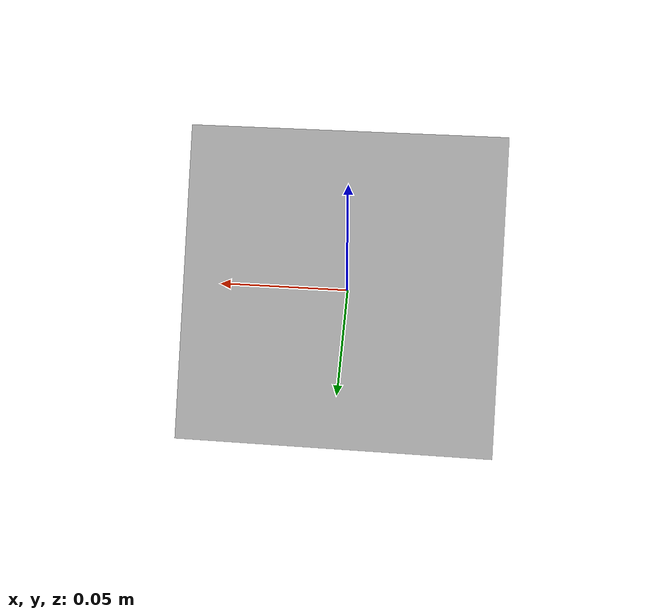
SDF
<?xml version="1.0" ?>

<sdf version="1.5">
    <!-- camera1  -->
    <model name='kinect'>
      <static>1</static>
      <pose frame=''>0 0 0 0 0.785 -1.57</pose>
      <!-- radian y= 50 z = 90 -->
      <link name='link'>
        <inertial>
          <mass>0.1</mass>
          <inertia>
            <ixx>1</ixx>
            <ixy>0</ixy>
            <ixz>0</ixz>
            <iyy>1</iyy>
            <iyz>0</iyz>
            <izz>1</izz>
          </inertia>
        </inertial>
        <collision name='collision'>
          <geometry>
            <box>
              <size>0.073 0.276 0.072</size>
            </box>
          </geometry>
          <max_contacts>10</max_contacts>
          <surface>
            <contact>
              <ode/>
            </contact>
            <bounce/>
            <friction>
              <torsional>
                <ode/>
              </torsional>
              <ode/>
            </friction>
          </surface>
        </collision>
        <visual name='visual'>
          <geometry>
            <box>
              <size>0.1 0.1 0.1</size>
            </box>
          </geometry>
        </visual>
        <sensor name='camera' type='depth'>
          <update_rate>20</update_rate>
          <camera name='__default__'>
            <horizontal_fov>1.0472</horizontal_fov>
            <image>
              <width>640</width>
              <height>480</height>
              <format>R8G8B8</format>
            </image>
            <clip>
              <near>0.01</near>
              <far>5</far>
            </clip>
          </camera>
          <plugin name="camera_plugin" filename="libgazebo_ros_openni_kinect.so">
            <baseline>0.2</baseline>
            <alwaysOn>true</alwaysOn>
            <updateRate>0.0</updateRate>
            <cameraName>camera_ir</cameraName>
            <imageTopicName>/camera/color/image_raw</imageTopicName>
            <cameraInfoTopicName>/camera/color/camera_info</cameraInfoTopicName>
            <depthImageTopicName>/camera/depth/image_raw</depthImageTopicName>
            <depthImageCameraInfoTopicName>/camera/depth/camera_info</depthImageCameraInfoTopicName>
            <pointCloudTopicName>/camera/depth/points</pointCloudTopicName>
            <frameName>robot1_tf/world</frameName>
            <pointCloudCutoff>0.5</pointCloudCutoff>
            <pointCloudCutoffMax>3.0</pointCloudCutoffMax>
            <distortionK1>0</distortionK1>
            <distortionK2>0</distortionK2>
            <distortionK3>0</distortionK3>
            <distortionT1>0</distortionT1>
            <distortionT2>0</distortionT2>
            <CxPrime>0</CxPrime>
            <Cx>0</Cx>
            <Cy>0</Cy>
            <focalLength>0</focalLength>
            <hackBaseline>0</hackBaseline>
          </plugin>
        </sensor>
        <self_collide>0</self_collide>
        <kinematic>0</kinematic>
      </link>
    </model>
</sdf>
